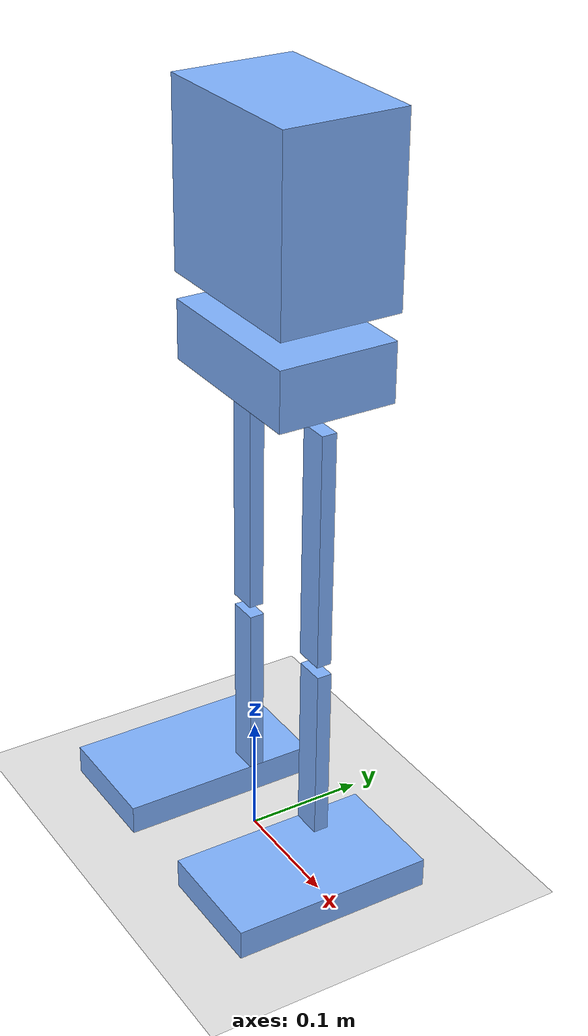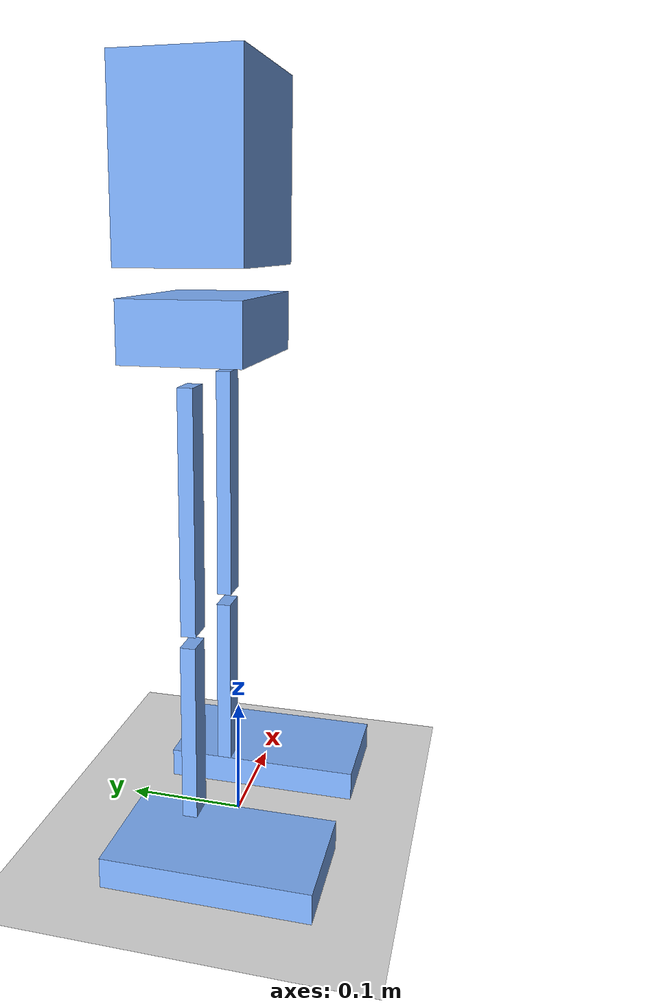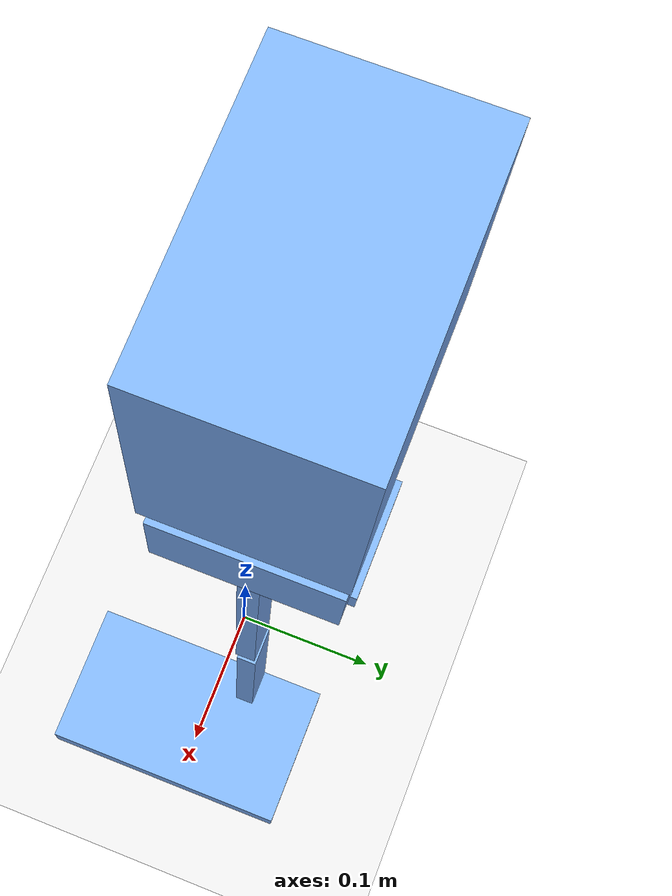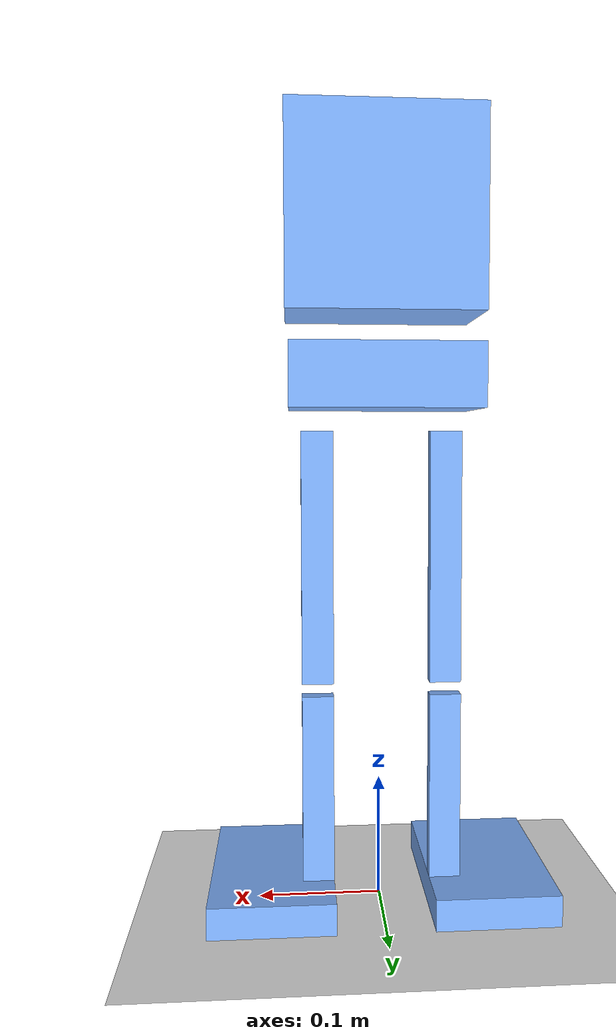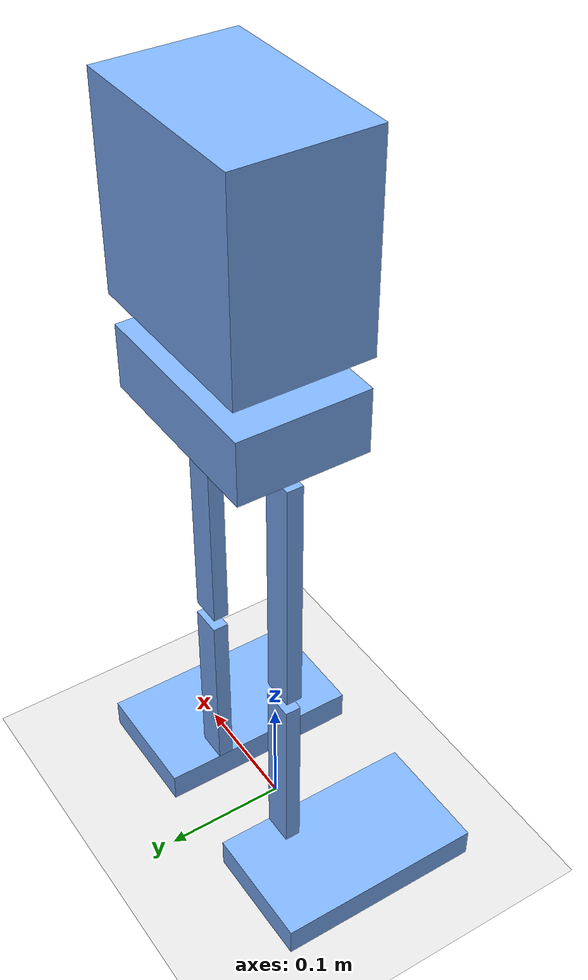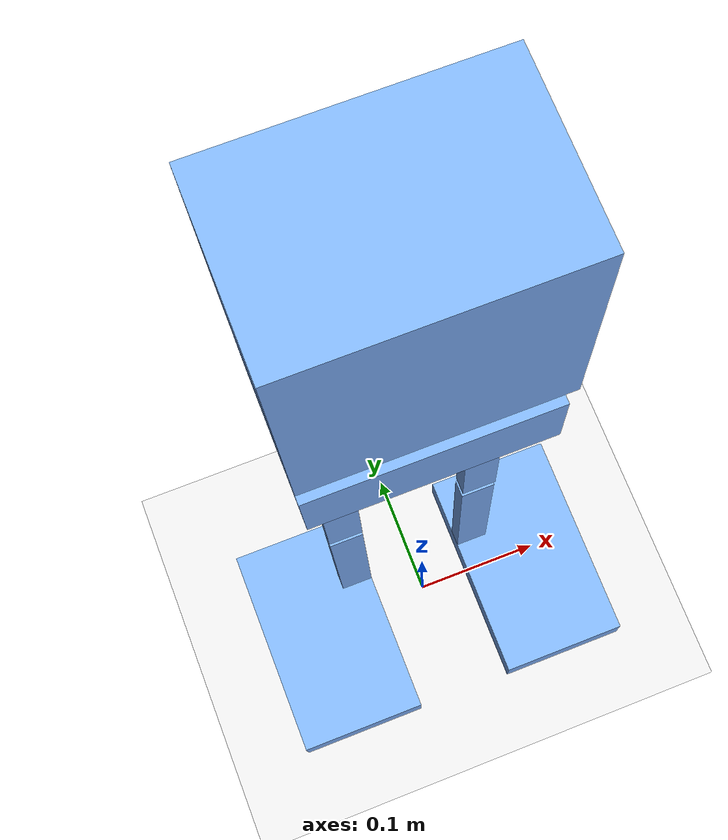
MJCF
<mujoco model="simple_biped">
    <compiler angle="radian" autolimits="true" />
    <visual>
        <map force="0.1" zfar="30"/>
        <rgba haze="0.15 0.25 0.35 1"/>
        <global offwidth="2560" offheight="1440" elevation="-20" azimuth="120"/>
    </visual>

    <default>
        <geom type="mesh" xyaxes="1 0 0 0 1 0" rgba="0.5 0.7 1.0 1"/>
        <joint damping="1" />
        <position kp="14" />
    </default>

    <asset>
        <mesh name="body" file="mesh/body.stl" scale="0.001 0.001 0.001"/>
        <mesh name="leftUpperLeg" file="mesh/leftUpperLeg.stl" scale="0.001 0.001 0.001"/>
        <mesh name="leftLowerLeg" file="mesh/leftLowerLeg.stl" scale="0.001 0.001 0.001"/>
        <mesh name="leftFoot" file="mesh/leftFoot.stl" scale="0.001 0.001 0.001"/>
        <mesh name="rightUpperLeg" file="mesh/rightUpperLeg.stl" scale="0.001 0.001 0.001"/>
        <mesh name="rightLowerLeg" file="mesh/rightLowerLeg.stl" scale="0.001 0.001 0.001"/>
        <mesh name="rightFoot" file="mesh/rightFoot.stl" scale="0.001 0.001 0.001"/>
        <mesh name="pelvis" file="mesh/pelvis.stl" scale="0.001 0.001 0.001"/>
    </asset>

    <worldbody>
        <geom name="floor" size="0 0 .05" type="plane" condim="3" rgba="0.9 0.9 0.9 1"/>
        <light name="spotlight" mode="targetbodycom" target="body" diffuse=".8 .8 .8" specular="0.3 0.3 0.3" pos="0 -6 4" cutoff="30"/>
        <body name="body" pos="0 0 0.632591">
            <freejoint  name="root"/>
            <geom mesh="body" density="700"/>
            <body name="pelvis">
                <geom mesh="pelvis" />
                <joint name="pelvisJoint" axis="0 0 1" pos="0 0 -0.17500" range="-2 2"/>
                <body name="leftUpperLeg">
                    <joint name="leftHipJoint" axis="0 1 0" pos="-0.05160 0.01774 -0.242016" range="-0.2 0.6"/>
                    <joint name="leftUpperLegJoint" axis="1 0 0" pos="-0.05160 0.01774 -0.242016" range="-1.5 1.5"/>
                    <geom mesh="leftUpperLeg" density="1500"/>
                    <body name="leftLowerLeg">
                        <joint name="leftLowerLegJoint" axis="1 0 0" pos="-0.05160 0.01774 -0.45520" range="0 2.7"/>
                        <geom mesh="leftLowerLeg" density="1500"/>
                        <body name="leftFoot" >
                            <joint name="leftFootJoint"  axis="1 0 0" pos="-0.05160 0.01774 -0.60760" range="-1 1"/>
                            <joint name="leftAnkleRollJoint" stiffness="5" damping="2" axis="0 1 0" pos="-0.05160 0.01774 -0.60760" range="-0.5 0.5"/>
                            <geom mesh="leftFoot" density="1000" friction="1 0.005 0.0001"/>
                            <site name="left_foot_site" pos="-0.06410 0 -0.63300" size="0.01"/>
                        </body>
                    </body>
                </body>
                <body name="rightUpperLeg">
                    <joint name="rightHipJoint" axis="0 1 0" pos="0.0516 0.01774 -0.242016" range="-0.2 0.6"/>
                    <joint name="rightUpperLegJoint" axis="1 0 0" pos="0.0516 0.01774 -0.242016" range="-1.5 1.5"/>
                    <geom mesh="rightUpperLeg" density="1500"/>
                    <body name="rightLowerLeg">
                        <joint name="rightLowerLegJoint" axis="1 0 0" pos="0.0516 0.01774 -0.45520" range="0 2.7"/>
                        <geom mesh="rightLowerLeg" density="1500"/>
                        <body name="rightFoot">
                            <joint name="rightFootJoint"  axis="1 0 0" pos="0.0516 0.01774 -0.60760" range="-1 1"/>
                            <joint name="rightAnkleRollJoint" stiffness="5" damping="2" axis="0 1 0" pos="0.0516 0.01774 -0.60760" range="-0.5 0.5"/>
                            <geom mesh="rightFoot" density="1000" friction="1 0.005 0.0001"  />
                            <site name="right_foot_site" pos="0.06410 0 -0.63300" size="0.01"/>
                        </body>
                    </body>
                </body>
            </body>
        </body>

        <camera name="track" mode="trackcom" pos="0 -3 1" xyaxes="1 0 0 0 0.2 1" target="body"/>

    </worldbody>

    <actuator>
        <position name="leftHipJoint" joint="leftHipJoint"  />
        <position name="leftUpperLegJoint" joint="leftUpperLegJoint"  />
        <position name="leftLowerLegJoint" joint="leftLowerLegJoint"  />
        <position name="leftFootJoint" joint="leftFootJoint" />

        <position name="rightHipJoint" joint="rightHipJoint" />
        <position name="rightUpperLegJoint" joint="rightUpperLegJoint"  />
        <position name="rightLowerLegJoint" joint="rightLowerLegJoint"  />
        <position name="rightFootJoint" joint="rightFootJoint" />
    </actuator>

    <keyframe>

    <key
  time="0"
  qpos="0.00196189 0.0173826 0.904723 1 0 0 0 0 0.052 -0.39 1.2825 -0.89 0 -0.052 -0.39 1.2825 -0.89 0"
  ctrl="0.052 -0.39 1.2825 -0.89 -0.052 -0.39 1.2825 -0.89"
/>
    </keyframe>
</mujoco>
